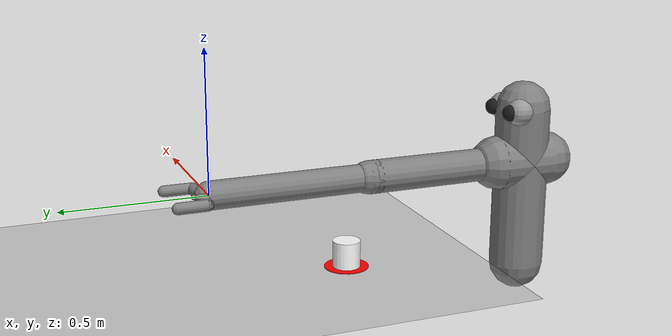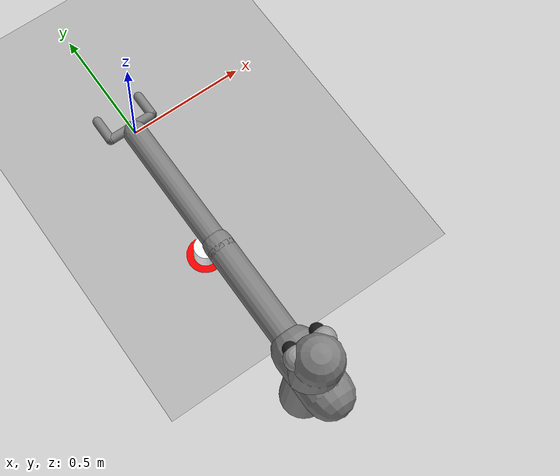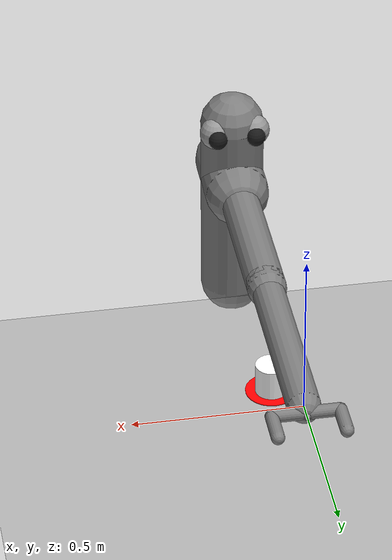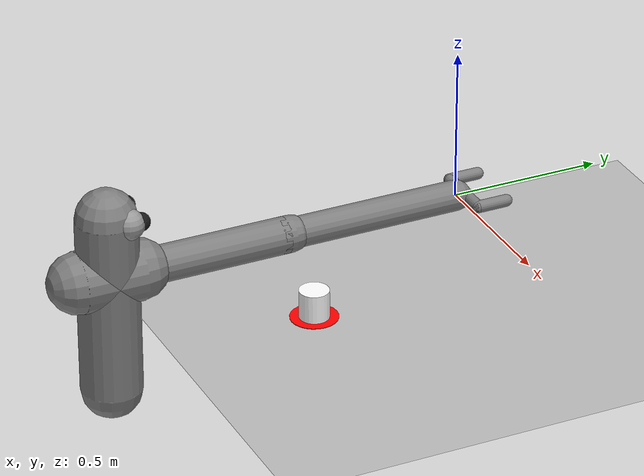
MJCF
<mujoco model="arm3d">
  <compiler inertiafromgeom="true" angle="radian" coordinate="local"/>
  <option timestep="0.01" gravity="0 0 0" iterations="20" integrator="Euler" />

  <default>
    <joint armature='0.04' damping="1" limited="true"/>
    <geom friction=".8 .1 .1" density="300" margin="0.002" condim="1" contype="0" conaffinity="0"/>
  </default>

  <worldbody>
    <light diffuse=".5 .5 .5" pos="0 0 3" dir="0 0 -1"/>
    <geom name="table" type="plane" pos="0 0.0 -0.325" size="1 1 0.1" contype="1" conaffinity="1"/>

    <body name="r_shoulder_pan_link" pos="0 -1.2 0">
      <geom name="e1" type="sphere" rgba="0.6 0.6 0.6 1" pos="-0.06 0.05 0.2" size="0.05" />
      <geom name="e2" type="sphere" rgba="0.6 0.6 0.6 1" pos=" 0.06 0.05 0.2" size="0.05" />
      <geom name="e1p" type="sphere" rgba="0.1 0.1 0.1 1" pos="-0.06 0.09 0.2" size="0.03" />
      <geom name="e2p" type="sphere" rgba="0.1 0.1 0.1 1" pos=" 0.06 0.09 0.2" size="0.03" />
      <geom name="sp" type="capsule" fromto="0 0 -0.4 0 0 0.2" size="0.1" />

      <!-- levo desno ceo robot -->

      <!-- oko svoje ose -->

      <body name="r_shoulder_z_rot" pos="0 0 0">
        <!-- rame ona kapsulica -->
        <geom name="sl" type="capsule" fromto="0 -0.1 0 0 0.1 0" size="0.1" contype="1" conaffinity="1" />

        <!-- rotiranje z osa -->
        <joint name="r_shoulder_z_rot_joint" type="hinge" pos="0 0 0" axis="0 0 1" range="-1 1" damping="1.0" />

        <body name="r_shoulder_lift_link" pos="0 0 0">
          <!-- dodao cisto zbog reda, nezz nije nista buk -->
          <geom name="zz_rot" type="capsule" fromto="0 -0.1 0 0 0.1 0" size="0.02" contype="1" conaffinity="1" />
          <!-- rame gore dole -->
          <joint name="r_shoulder_lift_joint" type="hinge" pos="0 0 0" axis="0 1 0" range="-0.5236 1.3963" damping="1.0" />

          <body name="r_upper_arm_roll_link" pos="0 0 0">
            <geom name="uar" type="capsule" fromto="0 -0.1 0 0 0.1 0" size="0.02"  contype="1" conaffinity="1"/>
            <joint name="r_upper_arm_roll_joint" type="hinge" pos="0 0 0" axis="1 0 0" range="-2 2" damping="0.1" />

            <body name="r_upper_arm_link" pos="0 0 0">
              <geom name="ua" type="capsule" fromto="0 0 0 0 0.6 0" size="0.06"  contype="1" conaffinity="1"/>

              <body name="r_elbow_flex_link" pos="0 0.6 0">
                <geom name="ef" type="capsule" fromto="0 -0.02 0 0 0.02 0" size="0.06"  contype="1" conaffinity="1"/>
                <joint name="r_elbow_flex_joint" type="hinge" pos="0 0 0" axis="0 1 0" range="-3.0 0" damping="0.1" />

                <body name="r_forearm_roll_link" pos="0 0 0">
                  <geom name="fr" type="capsule" fromto="0 -0.1 0 0 0.1 0" size="0.02"  contype="1" conaffinity="1"/>
                  <joint name="r_forearm_roll_joint" type="hinge" limited="true" pos="0 0 0" axis="1 0 0" damping=".1" range="-3 0"/>

                  <body name="r_forearm_link" pos="0 0 0">
                    <geom name="fa" type="capsule" fromto="0 0 0 0 0.6 0" size="0.05"  contype="1" conaffinity="1"/>

                    <body name="r_wrist_flex_link" pos="0 0.63 0">
                      <geom name="wf" type="capsule" fromto="0 -0.02 0 0 0.02 0" size="0.01"  contype="1" conaffinity="1"/>
                      <joint name="r_wrist_flex_joint" type="hinge" pos="0 0 0" axis="0 1 0" range="-2 2" damping=".1" />

                      <body name="r_wrist_roll_link" pos="0 0 0">
                        <joint name="r_wrist_roll_joint" type="hinge" pos="0 0 0" limited="true" axis="1 0 0" damping="0.1" range="-1.5 1.5"/>
                        <body name="tips_arm" pos="0 0 0">
                          <geom name="tip_arml" type="sphere" pos="-0.1 0.1 0.0" size="0.01"  contype="1" conaffinity="1"/>
                          <geom name="tip_armr" type="sphere" pos="0.1 0.1 0.0" size="0.01"  contype="1" conaffinity="1"/>
                        </body>
                        <geom type="capsule" fromto="-0.1 0.0 0.0 0.1 0.0 0.0" size="0.02" contype="1" conaffinity="1" />
                        <geom type="capsule" fromto="-0.1 0.0 0.0 -0.1 0.1 0.0" size="0.02" contype="1" conaffinity="1" />
                        <geom type="capsule" fromto="0.1 0.0 0.0 0.1 0.1 0.0" size="0.02" contype="1" conaffinity="1" />
                      </body>
                    </body>
                  </body>
                </body>
              </body>
            </body>
          </body>
        </body>

      </body>
    </body>

    <body name="object" pos="0.0 -0.5 -0.275" >
      <geom rgba="1 1 1 0" type="sphere" size="0.05 0.05 0.05" density="0.00001" conaffinity="0"/>
      <geom rgba="1 1 1 1" type="cylinder" size="0.05 0.05 0.05" density="0.00001" contype="1" conaffinity="0"/>
      <joint name="obj_slidey" type="slide" pos="0 0 0" axis="0 1 0" range="-10.3213 10.3" damping="0.5"/>
      <joint name="obj_slidex" type="slide" pos="0 0 0" axis="1 0 0" range="-10.3213 10.3" damping="0.5"/>
    </body>

    <body name="goal" pos="0.0 -0.5 -0.3230">
      <geom rgba="1 0 0 1" type="cylinder" size="0.08 0.001 0.1" density='0.00001' contype="0" conaffinity="0"/>
      <joint name="goal_slidey" type="slide" pos="0 0 0" axis="0 1 0" range="-10.3213 10.3" damping="0.5"/>
      <joint name="goal_slidex" type="slide" pos="0 0 0" axis="1 0 0" range="-10.3213 10.3" damping="0.5"/>
    </body>
  </worldbody>

  <actuator>
    <motor joint="r_shoulder_z_rot_joint" ctrlrange="-2.0 2.0" ctrllimited="true" />
    <motor joint="r_shoulder_lift_joint" ctrlrange="-2.0 2.0" ctrllimited="true" />
    <motor joint="r_upper_arm_roll_joint" ctrlrange="-2.0 2.0" ctrllimited="true" />
    <motor joint="r_elbow_flex_joint" ctrlrange="-2.0 2.0" ctrllimited="true" />
    <motor joint="r_forearm_roll_joint" ctrlrange="-2.0 2.0" ctrllimited="true" />
    <motor joint="r_wrist_flex_joint" ctrlrange="-2.0 2.0" ctrllimited="true" />
    <motor joint="r_wrist_roll_joint" ctrlrange="-2.0 2.0" ctrllimited="true"/>
  </actuator>
</mujoco>
